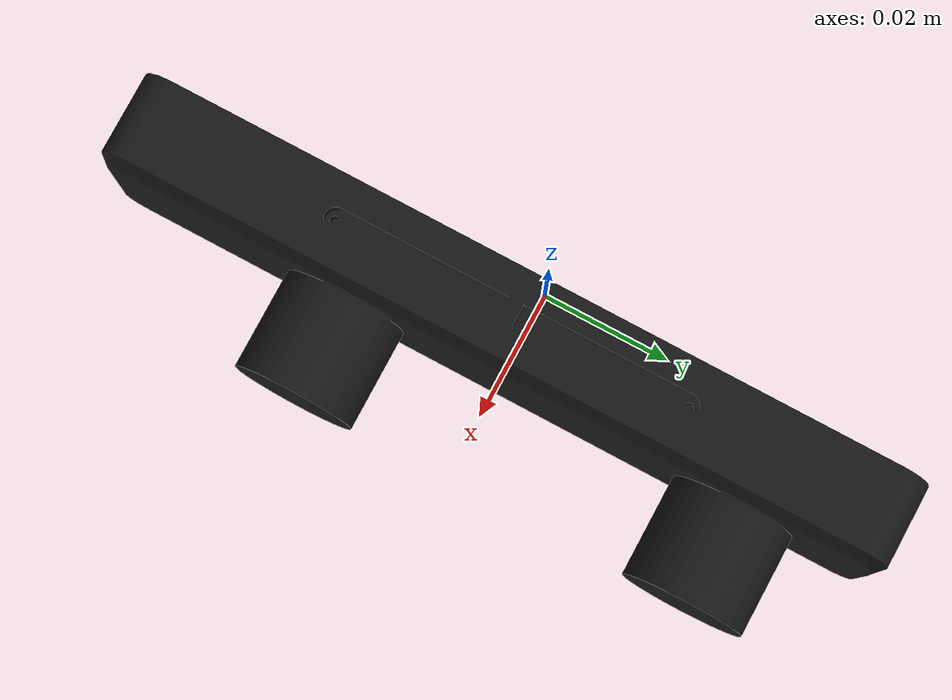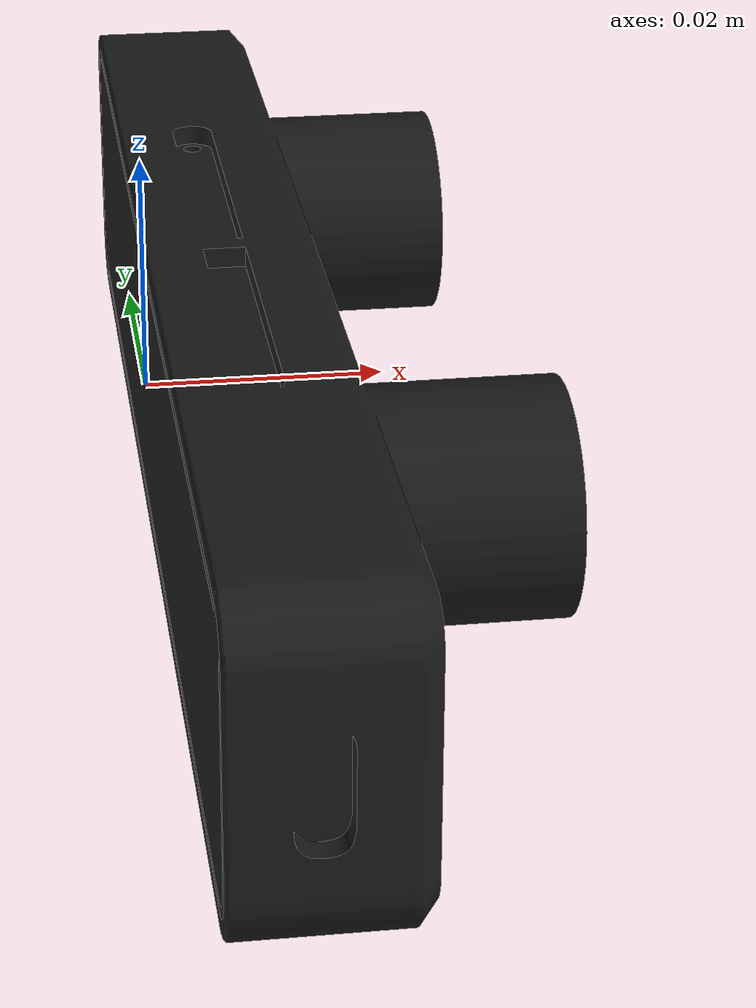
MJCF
<mujoco model="zed_mini">
  <compiler angle="radian" meshdir="assets" autolimits="true"/>

  <option cone="elliptic" impratio="10"/>

  <asset>
    <material name="gray" rgba="0.8 0.8 0.8 1"/>
    <material name="black" rgba="0.1 0.1 0.1 1"/>
    <mesh name="zed_mini" file="zed_mini.obj"/>
    <mesh name="zed_mini_coll" file="zed_mini.stl"/>
  </asset>

  <default>
    <default class="zed_mini">
      <default class="visual">
        <geom type="mesh" contype="0" conaffinity="0" group="2" material="black"/>
      </default>
      <default class="collision">
        <geom type="mesh" group="3"/>
      </default>
    </default>
  </default>

  <worldbody>
    <body name="zed_mini" childclass="zed_mini">
      <geom mesh="zed_mini" quat="1 0 0 0" material="black" class="visual"/>
      <geom mesh="zed_mini_coll" quat="1 0 0 0" material="black" class="collision"/>
<!-- intrinsic matrix from real camera -->
<!-- >>> np.arctan(720/(2*733.30859375))*360/np.pi
     np.float64(52.295211753153616) -->

      <camera name="camera" pos="0 0.0255 0" quat="0.5 0.5 -0.5 -0.5" fovy="52"/>
    </body>
  </worldbody>

</mujoco>
